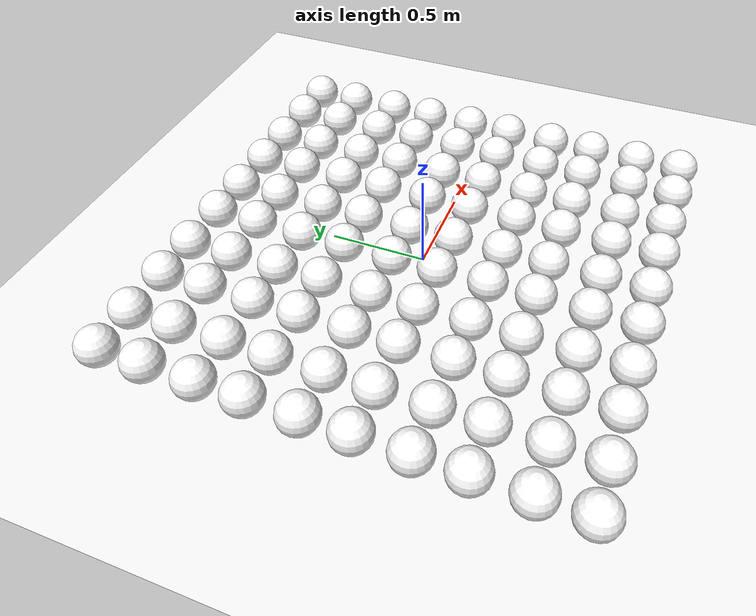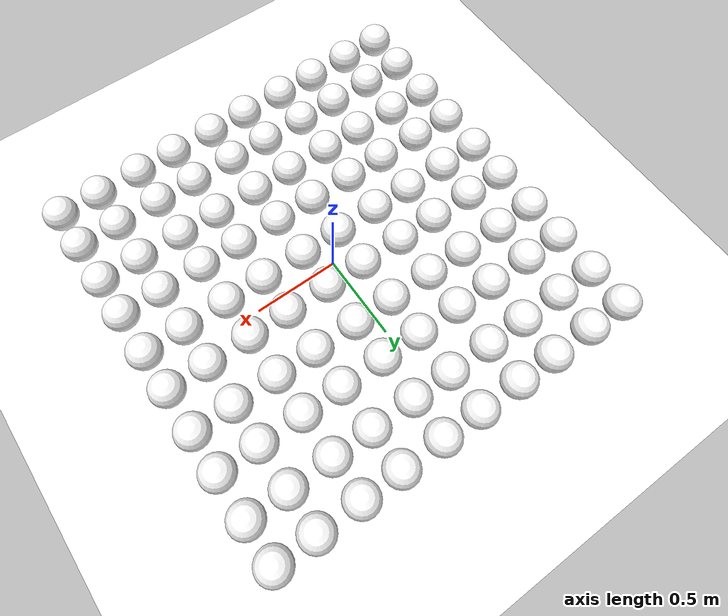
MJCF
<mujoco>
  <default>
    <default class="base_material">
      <material>
        <layer role="rgb" texture="white"/>
        <layer role="metallic" texture="white"/>
        <layer role="roughness" texture="white"/>
      </material>
    </default>
  </default>

  <asset>
    <texture name="ibl" type="2d" file="ibl.ktx"/>
    <texture name="white" type="2d" builtin="flat" rgb1="1 1 1" width="2" height="2"/>
    <texture name="grid" type="2d" builtin="checker" rgb1="1 1 1" rgb2="0.9 0.9 0.9" width="64" height="64"/>
    <material name="floor" reflectance="0.5" texture="grid" texrepeat="4 4" texuniform="true"/>

    <!-- Materials with metallic and roughness varying from 0 to 1 in 0.1 increments -->
    <material class="base_material" name="pbr_m0.0_r0.0" metallic="0.0" roughness="0.0"/>
    <material class="base_material" name="pbr_m0.0_r0.1" metallic="0.0" roughness="0.1"/>
    <material class="base_material" name="pbr_m0.0_r0.2" metallic="0.0" roughness="0.2"/>
    <material class="base_material" name="pbr_m0.0_r0.3" metallic="0.0" roughness="0.3"/>
    <material class="base_material" name="pbr_m0.0_r0.4" metallic="0.0" roughness="0.4"/>
    <material class="base_material" name="pbr_m0.0_r0.5" metallic="0.0" roughness="0.5"/>
    <material class="base_material" name="pbr_m0.0_r0.6" metallic="0.0" roughness="0.6"/>
    <material class="base_material" name="pbr_m0.0_r0.7" metallic="0.0" roughness="0.7"/>
    <material class="base_material" name="pbr_m0.0_r0.8" metallic="0.0" roughness="0.8"/>
    <material class="base_material" name="pbr_m0.0_r0.9" metallic="0.0" roughness="0.9"/>
    <material class="base_material" name="pbr_m0.0_r1.0" metallic="0.0" roughness="1.0"/>
    <material class="base_material" name="pbr_m0.1_r0.0" metallic="0.1" roughness="0.0"/>
    <material class="base_material" name="pbr_m0.1_r0.1" metallic="0.1" roughness="0.1"/>
    <material class="base_material" name="pbr_m0.1_r0.2" metallic="0.1" roughness="0.2"/>
    <material class="base_material" name="pbr_m0.1_r0.3" metallic="0.1" roughness="0.3"/>
    <material class="base_material" name="pbr_m0.1_r0.4" metallic="0.1" roughness="0.4"/>
    <material class="base_material" name="pbr_m0.1_r0.5" metallic="0.1" roughness="0.5"/>
    <material class="base_material" name="pbr_m0.1_r0.6" metallic="0.1" roughness="0.6"/>
    <material class="base_material" name="pbr_m0.1_r0.7" metallic="0.1" roughness="0.7"/>
    <material class="base_material" name="pbr_m0.1_r0.8" metallic="0.1" roughness="0.8"/>
    <material class="base_material" name="pbr_m0.1_r0.9" metallic="0.1" roughness="0.9"/>
    <material class="base_material" name="pbr_m0.1_r1.0" metallic="0.1" roughness="1.0"/>
    <material class="base_material" name="pbr_m0.2_r0.0" metallic="0.2" roughness="0.0"/>
    <material class="base_material" name="pbr_m0.2_r0.1" metallic="0.2" roughness="0.1"/>
    <material class="base_material" name="pbr_m0.2_r0.2" metallic="0.2" roughness="0.2"/>
    <material class="base_material" name="pbr_m0.2_r0.3" metallic="0.2" roughness="0.3"/>
    <material class="base_material" name="pbr_m0.2_r0.4" metallic="0.2" roughness="0.4"/>
    <material class="base_material" name="pbr_m0.2_r0.5" metallic="0.2" roughness="0.5"/>
    <material class="base_material" name="pbr_m0.2_r0.6" metallic="0.2" roughness="0.6"/>
    <material class="base_material" name="pbr_m0.2_r0.7" metallic="0.2" roughness="0.7"/>
    <material class="base_material" name="pbr_m0.2_r0.8" metallic="0.2" roughness="0.8"/>
    <material class="base_material" name="pbr_m0.2_r0.9" metallic="0.2" roughness="0.9"/>
    <material class="base_material" name="pbr_m0.2_r1.0" metallic="0.2" roughness="1.0"/>
    <material class="base_material" name="pbr_m0.3_r0.0" metallic="0.3" roughness="0.0"/>
    <material class="base_material" name="pbr_m0.3_r0.1" metallic="0.3" roughness="0.1"/>
    <material class="base_material" name="pbr_m0.3_r0.2" metallic="0.3" roughness="0.2"/>
    <material class="base_material" name="pbr_m0.3_r0.3" metallic="0.3" roughness="0.3"/>
    <material class="base_material" name="pbr_m0.3_r0.4" metallic="0.3" roughness="0.4"/>
    <material class="base_material" name="pbr_m0.3_r0.5" metallic="0.3" roughness="0.5"/>
    <material class="base_material" name="pbr_m0.3_r0.6" metallic="0.3" roughness="0.6"/>
    <material class="base_material" name="pbr_m0.3_r0.7" metallic="0.3" roughness="0.7"/>
    <material class="base_material" name="pbr_m0.3_r0.8" metallic="0.3" roughness="0.8"/>
    <material class="base_material" name="pbr_m0.3_r0.9" metallic="0.3" roughness="0.9"/>
    <material class="base_material" name="pbr_m0.3_r1.0" metallic="0.3" roughness="1.0"/>
    <material class="base_material" name="pbr_m0.4_r0.0" metallic="0.4" roughness="0.0"/>
    <material class="base_material" name="pbr_m0.4_r0.1" metallic="0.4" roughness="0.1"/>
    <material class="base_material" name="pbr_m0.4_r0.2" metallic="0.4" roughness="0.2"/>
    <material class="base_material" name="pbr_m0.4_r0.3" metallic="0.4" roughness="0.3"/>
    <material class="base_material" name="pbr_m0.4_r0.4" metallic="0.4" roughness="0.4"/>
    <material class="base_material" name="pbr_m0.4_r0.5" metallic="0.4" roughness="0.5"/>
    <material class="base_material" name="pbr_m0.4_r0.6" metallic="0.4" roughness="0.6"/>
    <material class="base_material" name="pbr_m0.4_r0.7" metallic="0.4" roughness="0.7"/>
    <material class="base_material" name="pbr_m0.4_r0.8" metallic="0.4" roughness="0.8"/>
    <material class="base_material" name="pbr_m0.4_r0.9" metallic="0.4" roughness="0.9"/>
    <material class="base_material" name="pbr_m0.4_r1.0" metallic="0.4" roughness="1.0"/>
    <material class="base_material" name="pbr_m0.5_r0.0" metallic="0.5" roughness="0.0"/>
    <material class="base_material" name="pbr_m0.5_r0.1" metallic="0.5" roughness="0.1"/>
    <material class="base_material" name="pbr_m0.5_r0.2" metallic="0.5" roughness="0.2"/>
    <material class="base_material" name="pbr_m0.5_r0.3" metallic="0.5" roughness="0.3"/>
    <material class="base_material" name="pbr_m0.5_r0.4" metallic="0.5" roughness="0.4"/>
    <material class="base_material" name="pbr_m0.5_r0.5" metallic="0.5" roughness="0.5"/>
    <material class="base_material" name="pbr_m0.5_r0.6" metallic="0.5" roughness="0.6"/>
    <material class="base_material" name="pbr_m0.5_r0.7" metallic="0.5" roughness="0.7"/>
    <material class="base_material" name="pbr_m0.5_r0.8" metallic="0.5" roughness="0.8"/>
    <material class="base_material" name="pbr_m0.5_r0.9" metallic="0.5" roughness="0.9"/>
    <material class="base_material" name="pbr_m0.5_r1.0" metallic="0.5" roughness="1.0"/>
    <material class="base_material" name="pbr_m0.6_r0.0" metallic="0.6" roughness="0.0"/>
    <material class="base_material" name="pbr_m0.6_r0.1" metallic="0.6" roughness="0.1"/>
    <material class="base_material" name="pbr_m0.6_r0.2" metallic="0.6" roughness="0.2"/>
    <material class="base_material" name="pbr_m0.6_r0.3" metallic="0.6" roughness="0.3"/>
    <material class="base_material" name="pbr_m0.6_r0.4" metallic="0.6" roughness="0.4"/>
    <material class="base_material" name="pbr_m0.6_r0.5" metallic="0.6" roughness="0.5"/>
    <material class="base_material" name="pbr_m0.6_r0.6" metallic="0.6" roughness="0.6"/>
    <material class="base_material" name="pbr_m0.6_r0.7" metallic="0.6" roughness="0.7"/>
    <material class="base_material" name="pbr_m0.6_r0.8" metallic="0.6" roughness="0.8"/>
    <material class="base_material" name="pbr_m0.6_r0.9" metallic="0.6" roughness="0.9"/>
    <material class="base_material" name="pbr_m0.6_r1.0" metallic="0.6" roughness="1.0"/>
    <material class="base_material" name="pbr_m0.7_r0.0" metallic="0.7" roughness="0.0"/>
    <material class="base_material" name="pbr_m0.7_r0.1" metallic="0.7" roughness="0.1"/>
    <material class="base_material" name="pbr_m0.7_r0.2" metallic="0.7" roughness="0.2"/>
    <material class="base_material" name="pbr_m0.7_r0.3" metallic="0.7" roughness="0.3"/>
    <material class="base_material" name="pbr_m0.7_r0.4" metallic="0.7" roughness="0.4"/>
    <material class="base_material" name="pbr_m0.7_r0.5" metallic="0.7" roughness="0.5"/>
    <material class="base_material" name="pbr_m0.7_r0.6" metallic="0.7" roughness="0.6"/>
    <material class="base_material" name="pbr_m0.7_r0.7" metallic="0.7" roughness="0.7"/>
    <material class="base_material" name="pbr_m0.7_r0.8" metallic="0.7" roughness="0.8"/>
    <material class="base_material" name="pbr_m0.7_r0.9" metallic="0.7" roughness="0.9"/>
    <material class="base_material" name="pbr_m0.7_r1.0" metallic="0.7" roughness="1.0"/>
    <material class="base_material" name="pbr_m0.8_r0.0" metallic="0.8" roughness="0.0"/>
    <material class="base_material" name="pbr_m0.8_r0.1" metallic="0.8" roughness="0.1"/>
    <material class="base_material" name="pbr_m0.8_r0.2" metallic="0.8" roughness="0.2"/>
    <material class="base_material" name="pbr_m0.8_r0.3" metallic="0.8" roughness="0.3"/>
    <material class="base_material" name="pbr_m0.8_r0.4" metallic="0.8" roughness="0.4"/>
    <material class="base_material" name="pbr_m0.8_r0.5" metallic="0.8" roughness="0.5"/>
    <material class="base_material" name="pbr_m0.8_r0.6" metallic="0.8" roughness="0.6"/>
    <material class="base_material" name="pbr_m0.8_r0.7" metallic="0.8" roughness="0.7"/>
    <material class="base_material" name="pbr_m0.8_r0.8" metallic="0.8" roughness="0.8"/>
    <material class="base_material" name="pbr_m0.8_r0.9" metallic="0.8" roughness="0.9"/>
    <material class="base_material" name="pbr_m0.8_r1.0" metallic="0.8" roughness="1.0"/>
    <material class="base_material" name="pbr_m0.9_r0.0" metallic="0.9" roughness="0.0"/>
    <material class="base_material" name="pbr_m0.9_r0.1" metallic="0.9" roughness="0.1"/>
    <material class="base_material" name="pbr_m0.9_r0.2" metallic="0.9" roughness="0.2"/>
    <material class="base_material" name="pbr_m0.9_r0.3" metallic="0.9" roughness="0.3"/>
    <material class="base_material" name="pbr_m0.9_r0.4" metallic="0.9" roughness="0.4"/>
    <material class="base_material" name="pbr_m0.9_r0.5" metallic="0.9" roughness="0.5"/>
    <material class="base_material" name="pbr_m0.9_r0.6" metallic="0.9" roughness="0.6"/>
    <material class="base_material" name="pbr_m0.9_r0.7" metallic="0.9" roughness="0.7"/>
    <material class="base_material" name="pbr_m0.9_r0.8" metallic="0.9" roughness="0.8"/>
    <material class="base_material" name="pbr_m0.9_r0.9" metallic="0.9" roughness="0.9"/>
    <material class="base_material" name="pbr_m0.9_r1.0" metallic="0.9" roughness="1.0"/>
    <material class="base_material" name="pbr_m1.0_r0.0" metallic="1.0" roughness="0.0"/>
    <material class="base_material" name="pbr_m1.0_r0.1" metallic="1.0" roughness="0.1"/>
    <material class="base_material" name="pbr_m1.0_r0.2" metallic="1.0" roughness="0.2"/>
    <material class="base_material" name="pbr_m1.0_r0.3" metallic="1.0" roughness="0.3"/>
    <material class="base_material" name="pbr_m1.0_r0.4" metallic="1.0" roughness="0.4"/>
    <material class="base_material" name="pbr_m1.0_r0.5" metallic="1.0" roughness="0.5"/>
    <material class="base_material" name="pbr_m1.0_r0.6" metallic="1.0" roughness="0.6"/>
    <material class="base_material" name="pbr_m1.0_r0.7" metallic="1.0" roughness="0.7"/>
    <material class="base_material" name="pbr_m1.0_r0.8" metallic="1.0" roughness="0.8"/>
    <material class="base_material" name="pbr_m1.0_r0.9" metallic="1.0" roughness="0.9"/>
    <material class="base_material" name="pbr_m1.0_r1.0" metallic="1.0" roughness="1.0"/>
  </asset>

  <worldbody>
    <light type="image" texture="ibl" intensity="10000"/>
    <camera name="default" pos="2.033 -2.172 1.187" xyaxes="0.726 0.688 0.000 -0.291 0.307 0.906"/>
    <geom name="ground" type="plane" size="2 2 0.1" material="floor"/>
    <body name="pbr_grid" pos="0 0 0">
      <geom name="sphere_m0_r0" type="sphere" size="0.1" pos="-1.12 -1.12 0.1" material="pbr_m0.0_r0.0"/>
      <geom name="sphere_m0_r1" type="sphere" size="0.1" pos="-1.12 -0.88 0.1" material="pbr_m0.0_r0.1"/>
      <geom name="sphere_m0_r2" type="sphere" size="0.1" pos="-1.12 -0.62 0.1" material="pbr_m0.0_r0.2"/>
      <geom name="sphere_m0_r3" type="sphere" size="0.1" pos="-1.12 -0.38 0.1" material="pbr_m0.0_r0.3"/>
      <geom name="sphere_m0_r4" type="sphere" size="0.1" pos="-1.12 -0.12 0.1" material="pbr_m0.0_r0.4"/>
      <geom name="sphere_m0_r5" type="sphere" size="0.1" pos="-1.12 0.12 0.1"  material="pbr_m0.0_r0.5"/>
      <geom name="sphere_m0_r6" type="sphere" size="0.1" pos="-1.12 0.38 0.1"  material="pbr_m0.0_r0.6"/>
      <geom name="sphere_m0_r7" type="sphere" size="0.1" pos="-1.12 0.62 0.1"  material="pbr_m0.0_r0.7"/>
      <geom name="sphere_m0_r8" type="sphere" size="0.1" pos="-1.12 0.88 0.1"  material="pbr_m0.0_r0.8"/>
      <geom name="sphere_m0_r9" type="sphere" size="0.1" pos="-1.12 1.12 0.1"  material="pbr_m0.0_r0.9"/>
      <geom name="sphere_m1_r0" type="sphere" size="0.1" pos="-0.88 -1.12 0.1" material="pbr_m0.1_r0.0"/>
      <geom name="sphere_m1_r1" type="sphere" size="0.1" pos="-0.88 -0.88 0.1" material="pbr_m0.1_r0.1"/>
      <geom name="sphere_m1_r2" type="sphere" size="0.1" pos="-0.88 -0.62 0.1" material="pbr_m0.1_r0.2"/>
      <geom name="sphere_m1_r3" type="sphere" size="0.1" pos="-0.88 -0.38 0.1" material="pbr_m0.1_r0.3"/>
      <geom name="sphere_m1_r4" type="sphere" size="0.1" pos="-0.88 -0.12 0.1" material="pbr_m0.1_r0.4"/>
      <geom name="sphere_m1_r5" type="sphere" size="0.1" pos="-0.88 0.12 0.1"  material="pbr_m0.1_r0.5"/>
      <geom name="sphere_m1_r6" type="sphere" size="0.1" pos="-0.88 0.38 0.1"  material="pbr_m0.1_r0.6"/>
      <geom name="sphere_m1_r7" type="sphere" size="0.1" pos="-0.88 0.62 0.1"  material="pbr_m0.1_r0.7"/>
      <geom name="sphere_m1_r8" type="sphere" size="0.1" pos="-0.88 0.88 0.1"  material="pbr_m0.1_r0.8"/>
      <geom name="sphere_m1_r9" type="sphere" size="0.1" pos="-0.88 1.12 0.1"  material="pbr_m0.1_r0.9"/>
      <geom name="sphere_m2_r0" type="sphere" size="0.1" pos="-0.62 -1.12 0.1" material="pbr_m0.2_r0.0"/>
      <geom name="sphere_m2_r1" type="sphere" size="0.1" pos="-0.62 -0.88 0.1" material="pbr_m0.2_r0.1"/>
      <geom name="sphere_m2_r2" type="sphere" size="0.1" pos="-0.62 -0.62 0.1" material="pbr_m0.2_r0.2"/>
      <geom name="sphere_m2_r3" type="sphere" size="0.1" pos="-0.62 -0.38 0.1" material="pbr_m0.2_r0.3"/>
      <geom name="sphere_m2_r4" type="sphere" size="0.1" pos="-0.62 -0.12 0.1" material="pbr_m0.2_r0.4"/>
      <geom name="sphere_m2_r5" type="sphere" size="0.1" pos="-0.62 0.12 0.1"  material="pbr_m0.2_r0.5"/>
      <geom name="sphere_m2_r6" type="sphere" size="0.1" pos="-0.62 0.38 0.1"  material="pbr_m0.2_r0.6"/>
      <geom name="sphere_m2_r7" type="sphere" size="0.1" pos="-0.62 0.62 0.1"  material="pbr_m0.2_r0.7"/>
      <geom name="sphere_m2_r8" type="sphere" size="0.1" pos="-0.62 0.88 0.1"  material="pbr_m0.2_r0.8"/>
      <geom name="sphere_m2_r9" type="sphere" size="0.1" pos="-0.62 1.12 0.1"  material="pbr_m0.2_r0.9"/>
      <geom name="sphere_m3_r0" type="sphere" size="0.1" pos="-0.38 -1.12 0.1" material="pbr_m0.3_r0.0"/>
      <geom name="sphere_m3_r1" type="sphere" size="0.1" pos="-0.38 -0.88 0.1" material="pbr_m0.3_r0.1"/>
      <geom name="sphere_m3_r2" type="sphere" size="0.1" pos="-0.38 -0.62 0.1" material="pbr_m0.3_r0.2"/>
      <geom name="sphere_m3_r3" type="sphere" size="0.1" pos="-0.38 -0.38 0.1" material="pbr_m0.3_r0.3"/>
      <geom name="sphere_m3_r4" type="sphere" size="0.1" pos="-0.38 -0.12 0.1" material="pbr_m0.3_r0.4"/>
      <geom name="sphere_m3_r5" type="sphere" size="0.1" pos="-0.38 0.12 0.1"  material="pbr_m0.3_r0.5"/>
      <geom name="sphere_m3_r6" type="sphere" size="0.1" pos="-0.38 0.38 0.1"  material="pbr_m0.3_r0.6"/>
      <geom name="sphere_m3_r7" type="sphere" size="0.1" pos="-0.38 0.62 0.1"  material="pbr_m0.3_r0.7"/>
      <geom name="sphere_m3_r8" type="sphere" size="0.1" pos="-0.38 0.88 0.1"  material="pbr_m0.3_r0.8"/>
      <geom name="sphere_m3_r9" type="sphere" size="0.1" pos="-0.38 1.12 0.1"  material="pbr_m0.3_r0.9"/>
      <geom name="sphere_m4_r0" type="sphere" size="0.1" pos="-0.12 -1.12 0.1" material="pbr_m0.4_r0.0"/>
      <geom name="sphere_m4_r1" type="sphere" size="0.1" pos="-0.12 -0.88 0.1" material="pbr_m0.4_r0.1"/>
      <geom name="sphere_m4_r2" type="sphere" size="0.1" pos="-0.12 -0.62 0.1" material="pbr_m0.4_r0.2"/>
      <geom name="sphere_m4_r3" type="sphere" size="0.1" pos="-0.12 -0.38 0.1" material="pbr_m0.4_r0.3"/>
      <geom name="sphere_m4_r4" type="sphere" size="0.1" pos="-0.12 -0.12 0.1" material="pbr_m0.4_r0.4"/>
      <geom name="sphere_m4_r5" type="sphere" size="0.1" pos="-0.12 0.12 0.1"  material="pbr_m0.4_r0.5"/>
      <geom name="sphere_m4_r6" type="sphere" size="0.1" pos="-0.12 0.38 0.1"  material="pbr_m0.4_r0.6"/>
      <geom name="sphere_m4_r7" type="sphere" size="0.1" pos="-0.12 0.62 0.1"  material="pbr_m0.4_r0.7"/>
      <geom name="sphere_m4_r8" type="sphere" size="0.1" pos="-0.12 0.88 0.1"  material="pbr_m0.4_r0.8"/>
      <geom name="sphere_m4_r9" type="sphere" size="0.1" pos="-0.12 1.12 0.1"  material="pbr_m0.4_r0.9"/>
      <geom name="sphere_m5_r0" type="sphere" size="0.1" pos="0.12 -1.12 0.1"  material="pbr_m0.5_r0.0"/>
      <geom name="sphere_m5_r1" type="sphere" size="0.1" pos="0.12 -0.88 0.1"  material="pbr_m0.5_r0.1"/>
      <geom name="sphere_m5_r2" type="sphere" size="0.1" pos="0.12 -0.62 0.1"  material="pbr_m0.5_r0.2"/>
      <geom name="sphere_m5_r3" type="sphere" size="0.1" pos="0.12 -0.38 0.1"  material="pbr_m0.5_r0.3"/>
      <geom name="sphere_m5_r4" type="sphere" size="0.1" pos="0.12 -0.12 0.1"  material="pbr_m0.5_r0.4"/>
      <geom name="sphere_m5_r5" type="sphere" size="0.1" pos="0.12 0.12 0.1"   material="pbr_m0.5_r0.5"/>
      <geom name="sphere_m5_r6" type="sphere" size="0.1" pos="0.12 0.38 0.1"   material="pbr_m0.5_r0.6"/>
      <geom name="sphere_m5_r7" type="sphere" size="0.1" pos="0.12 0.62 0.1"   material="pbr_m0.5_r0.7"/>
      <geom name="sphere_m5_r8" type="sphere" size="0.1" pos="0.12 0.88 0.1"   material="pbr_m0.5_r0.8"/>
      <geom name="sphere_m5_r9" type="sphere" size="0.1" pos="0.12 1.12 0.1"   material="pbr_m0.5_r0.9"/>
      <geom name="sphere_m6_r0" type="sphere" size="0.1" pos="0.38 -1.12 0.1"  material="pbr_m0.6_r0.0"/>
      <geom name="sphere_m6_r1" type="sphere" size="0.1" pos="0.38 -0.88 0.1"  material="pbr_m0.6_r0.1"/>
      <geom name="sphere_m6_r2" type="sphere" size="0.1" pos="0.38 -0.62 0.1"  material="pbr_m0.6_r0.2"/>
      <geom name="sphere_m6_r3" type="sphere" size="0.1" pos="0.38 -0.38 0.1"  material="pbr_m0.6_r0.3"/>
      <geom name="sphere_m6_r4" type="sphere" size="0.1" pos="0.38 -0.12 0.1"  material="pbr_m0.6_r0.4"/>
      <geom name="sphere_m6_r5" type="sphere" size="0.1" pos="0.38 0.12 0.1"   material="pbr_m0.6_r0.5"/>
      <geom name="sphere_m6_r6" type="sphere" size="0.1" pos="0.38 0.38 0.1"   material="pbr_m0.6_r0.6"/>
      <geom name="sphere_m6_r7" type="sphere" size="0.1" pos="0.38 0.62 0.1"   material="pbr_m0.6_r0.7"/>
      <geom name="sphere_m6_r8" type="sphere" size="0.1" pos="0.38 0.88 0.1"   material="pbr_m0.6_r0.8"/>
      <geom name="sphere_m6_r9" type="sphere" size="0.1" pos="0.38 1.12 0.1"   material="pbr_m0.6_r0.9"/>
      <geom name="sphere_m7_r0" type="sphere" size="0.1" pos="0.62 -1.12 0.1"  material="pbr_m0.7_r0.0"/>
      <geom name="sphere_m7_r1" type="sphere" size="0.1" pos="0.62 -0.88 0.1"  material="pbr_m0.7_r0.1"/>
      <geom name="sphere_m7_r2" type="sphere" size="0.1" pos="0.62 -0.62 0.1"  material="pbr_m0.7_r0.2"/>
      <geom name="sphere_m7_r3" type="sphere" size="0.1" pos="0.62 -0.38 0.1"  material="pbr_m0.7_r0.3"/>
      <geom name="sphere_m7_r4" type="sphere" size="0.1" pos="0.62 -0.12 0.1"  material="pbr_m0.7_r0.4"/>
      <geom name="sphere_m7_r5" type="sphere" size="0.1" pos="0.62 0.12 0.1"   material="pbr_m0.7_r0.5"/>
      <geom name="sphere_m7_r6" type="sphere" size="0.1" pos="0.62 0.38 0.1"   material="pbr_m0.7_r0.6"/>
      <geom name="sphere_m7_r7" type="sphere" size="0.1" pos="0.62 0.62 0.1"   material="pbr_m0.7_r0.7"/>
      <geom name="sphere_m7_r8" type="sphere" size="0.1" pos="0.62 0.88 0.1"   material="pbr_m0.7_r0.8"/>
      <geom name="sphere_m7_r9" type="sphere" size="0.1" pos="0.62 1.12 0.1"   material="pbr_m0.7_r0.9"/>
      <geom name="sphere_m8_r0" type="sphere" size="0.1" pos="0.88 -1.12 0.1"  material="pbr_m0.8_r0.0"/>
      <geom name="sphere_m8_r1" type="sphere" size="0.1" pos="0.88 -0.88 0.1"  material="pbr_m0.8_r0.1"/>
      <geom name="sphere_m8_r2" type="sphere" size="0.1" pos="0.88 -0.62 0.1"  material="pbr_m0.8_r0.2"/>
      <geom name="sphere_m8_r3" type="sphere" size="0.1" pos="0.88 -0.38 0.1"  material="pbr_m0.8_r0.3"/>
      <geom name="sphere_m8_r4" type="sphere" size="0.1" pos="0.88 -0.12 0.1"  material="pbr_m0.8_r0.4"/>
      <geom name="sphere_m8_r5" type="sphere" size="0.1" pos="0.88 0.12 0.1"   material="pbr_m0.8_r0.5"/>
      <geom name="sphere_m8_r6" type="sphere" size="0.1" pos="0.88 0.38 0.1"   material="pbr_m0.8_r0.6"/>
      <geom name="sphere_m8_r7" type="sphere" size="0.1" pos="0.88 0.62 0.1"   material="pbr_m0.8_r0.7"/>
      <geom name="sphere_m8_r8" type="sphere" size="0.1" pos="0.88 0.88 0.1"   material="pbr_m0.8_r0.8"/>
      <geom name="sphere_m8_r9" type="sphere" size="0.1" pos="0.88 1.12 0.1"   material="pbr_m0.8_r0.9"/>
      <geom name="sphere_m9_r0" type="sphere" size="0.1" pos="1.12 -1.12 0.1"  material="pbr_m0.9_r0.0"/>
      <geom name="sphere_m9_r1" type="sphere" size="0.1" pos="1.12 -0.88 0.1"  material="pbr_m0.9_r0.1"/>
      <geom name="sphere_m9_r2" type="sphere" size="0.1" pos="1.12 -0.62 0.1"  material="pbr_m0.9_r0.2"/>
      <geom name="sphere_m9_r3" type="sphere" size="0.1" pos="1.12 -0.38 0.1"  material="pbr_m0.9_r0.3"/>
      <geom name="sphere_m9_r4" type="sphere" size="0.1" pos="1.12 -0.12 0.1"  material="pbr_m0.9_r0.4"/>
      <geom name="sphere_m9_r5" type="sphere" size="0.1" pos="1.12 0.12 0.1"   material="pbr_m0.9_r0.5"/>
      <geom name="sphere_m9_r6" type="sphere" size="0.1" pos="1.12 0.38 0.1"   material="pbr_m0.9_r0.6"/>
      <geom name="sphere_m9_r7" type="sphere" size="0.1" pos="1.12 0.62 0.1"   material="pbr_m0.9_r0.7"/>
      <geom name="sphere_m9_r8" type="sphere" size="0.1" pos="1.12 0.88 0.1"   material="pbr_m0.9_r0.8"/>
      <geom name="sphere_m9_r9" type="sphere" size="0.1" pos="1.12 1.12 0.1"   material="pbr_m0.9_r0.9"/>
    </body>
  </worldbody>
</mujoco>
